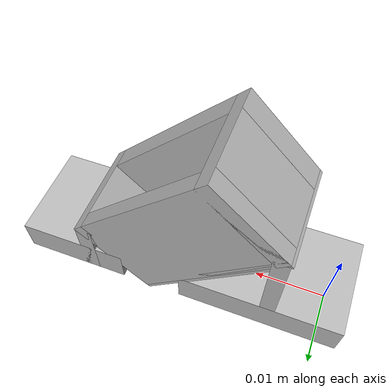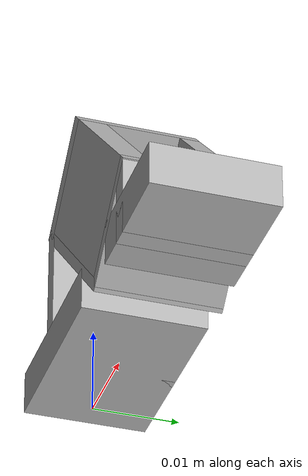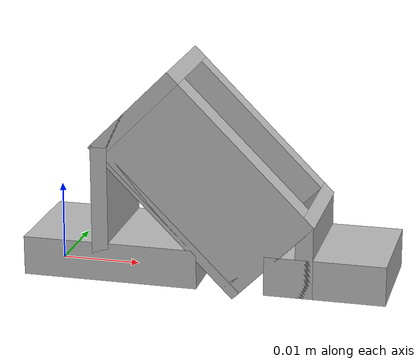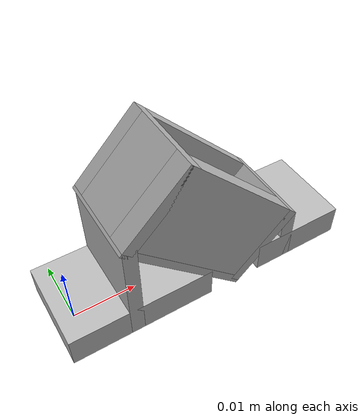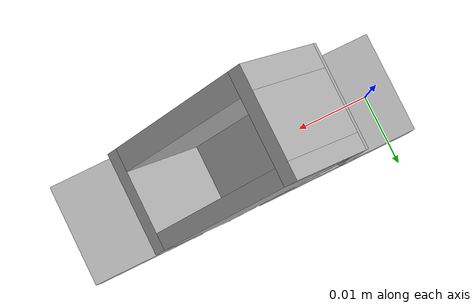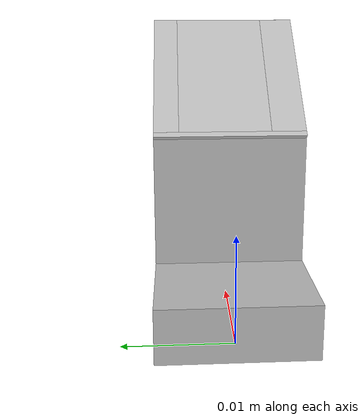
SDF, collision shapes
<?xml version="1.0" ?>
<sdf version="1.9">
  <model name="SC Mount">
    <link name="sc_mount_link">
      <visual name="sc_mount_visual">
        <geometry>
          <mesh>
            <uri>sc_mount_visual.glb</uri>
          </mesh>
        </geometry>
      </visual>
      <collision name="v1015079011_collider_box">
        <pose>0.035449 -0.0 0.0025 0.0 -0.0 -0.0</pose>
        <geometry>
          <box>
            <size>0.015101 0.014 0.005</size>
          </box>
        </geometry>
      </collision>
      <collision name="v1015079011_collider_box.001">
        <pose>0.020068 -0.0054 0.013451 0.0 0.785398 -0.0</pose>
        <geometry>
          <box>
            <size>0.025812 0.0032 0.013799</size>
          </box>
        </geometry>
      </collision>
      <collision name="v1015079011_collider_box.002">
        <pose>0.020068 0.00585 0.013451 0.0 0.785398 -0.0</pose>
        <geometry>
          <box>
            <size>0.025812 0.0023 0.013799</size>
          </box>
        </geometry>
      </collision>
      <collision name="v1015079011_collider_box003_collider_box">
        <pose>0.01165 -0.0 0.02187 0.0 0.785398 -0.0</pose>
        <geometry>
          <box>
            <size>0.002 0.014 0.013799</size>
          </box>
        </geometry>
      </collision>
      <collision name="v1015079011_collider_box003_collider_box.001">
        <pose>0.028564 -0.0 0.004956 0.0 0.785398 -0.0</pose>
        <geometry>
          <box>
            <size>0.001842 0.014 0.013799</size>
          </box>
        </geometry>
      </collision>
      <collision name="v1015079011_collider_box003_collider_box.002">
        <pose>0.008208 -0.0 0.0025 0.0 -0.0 -0.0</pose>
        <geometry>
          <box>
            <size>0.02236 0.014 0.005</size>
          </box>
        </geometry>
      </collision>
      <collision name="v1015079011_collider_box003_collider_box.003">
        <pose>0.015274 -0.0 0.008656 0.0 0.785398 -0.0</pose>
        <geometry>
          <box>
            <size>0.025812 0.014 0.001239</size>
          </box>
        </geometry>
      </collision>
      <collision name="v1015079011_collider_box003_collider_box.004">
        <pose>0.032889 -0.0 0.004624 0.0 -0.0 -0.0</pose>
        <geometry>
          <box>
            <size>0.002221 0.014 0.009249</size>
          </box>
        </geometry>
      </collision>
      <collision name="v1015079011_collider_box003_collider_box004_collider_box">
        <pose>0.007045 -0.0 0.008711 0.0 -0.0 -0.0</pose>
        <geometry>
          <box>
            <size>0.00209 0.014 0.017422</size>
          </box>
        </geometry>
      </collision>
    </link>
  </model>
</sdf>
